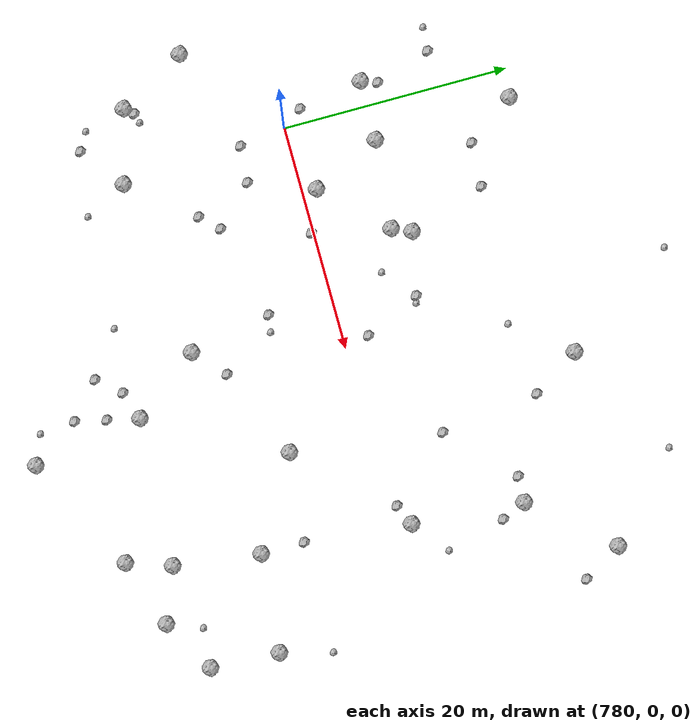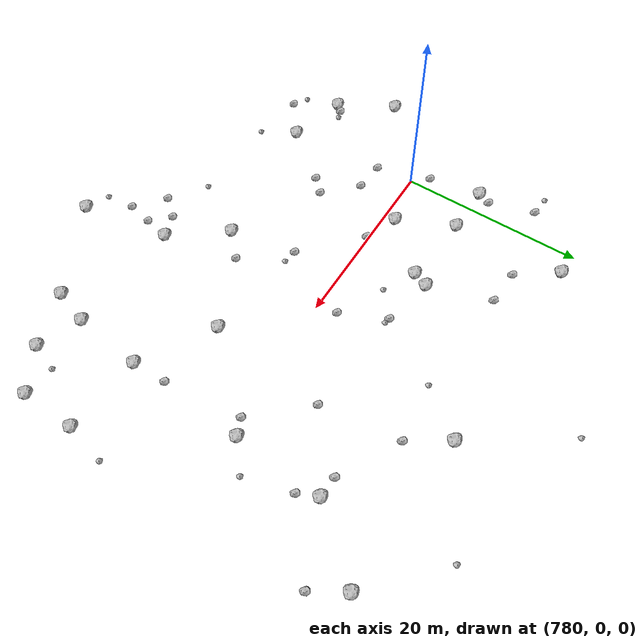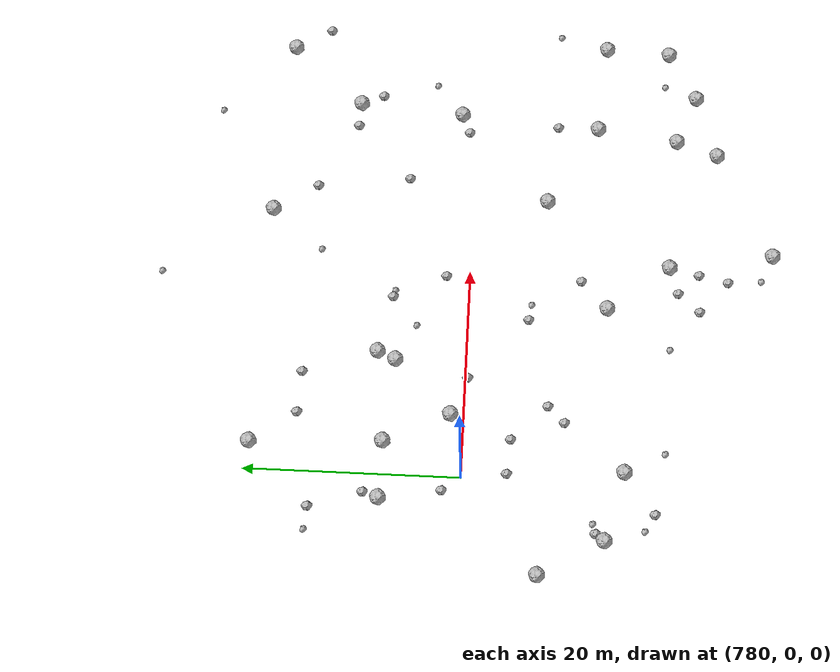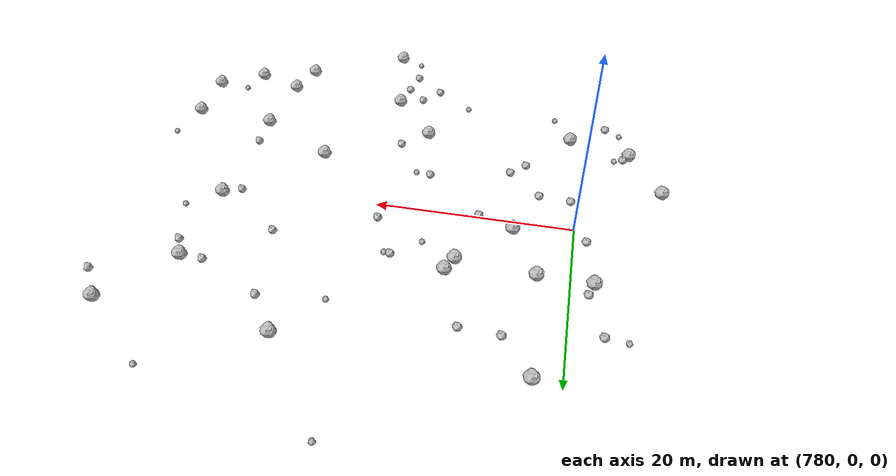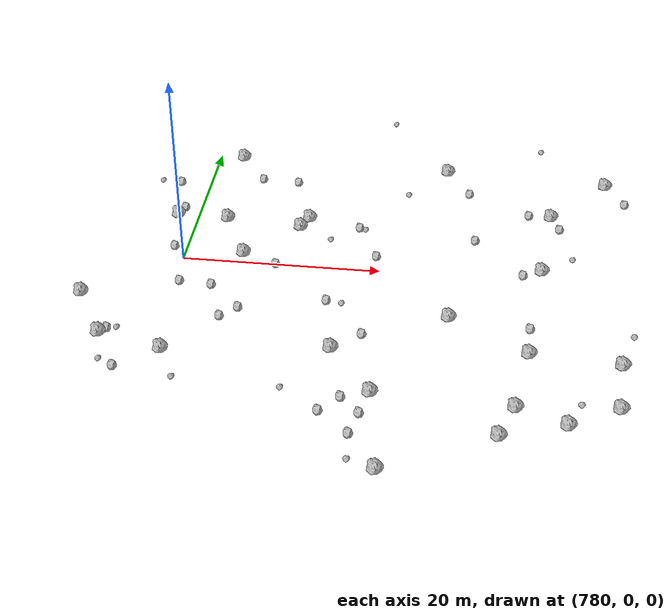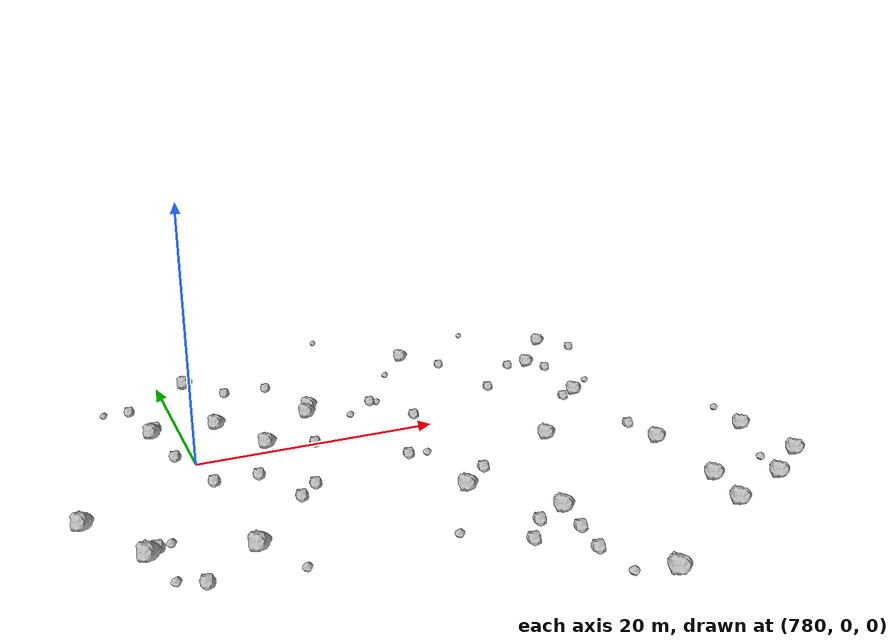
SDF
<sdf version="1.6">
 <world name="default">
  <include><uri>model://sun</uri></include>
  <model name="rock1_20_4">
   <include><uri>model://rock1</uri><pose>781.1143959704816 -14.801924576898525 0.5 0 0 0</pose></include>
  </model>
  <model name="rock1_20_5">
   <include><uri>model://rock1</uri><pose>774.7118608788161 -13.091684093272661 0.5 0 0 0</pose></include>
  </model>
  <model name="rock1_20_6">
   <include><uri>model://rock1</uri><pose>782.6482557665228 19.5563667849596 0.5 0 0 0</pose></include>
  </model>
  <model name="rock1_20_7">
   <include><uri>model://rock1</uri><pose>815.1859044558648 -11.678978093760762 0.5 0 0 0</pose></include>
  </model>
  <model name="rock1_20_8">
   <include><uri>model://rock1</uri><pose>771.3664273071158 -7.144793234342696 0.5 0 0 0</pose></include>
  </model>
  <model name="rock1_20_9">
   <include><uri>model://rock1</uri><pose>801.1620697588274 -18.697663070166705 0.5 0 0 0</pose></include>
  </model>
  <model name="rock1_20_10">
   <include><uri>model://rock1</uri><pose>814.1579942251059 -19.272738640947153 0.5 0 0 0</pose></include>
  </model>
  <model name="rock1_20_11">
   <include><uri>model://rock1</uri><pose>777.8475024990588 7.451755586146959 0.5 0 0 0</pose></include>
  </model>
  <model name="rock1_20_12">
   <include><uri>model://rock1</uri><pose>783.166279766938 7.33628097747571 0.5 0 0 0</pose></include>
  </model>
  <model name="rock1_20_13">
   <include><uri>model://rock1</uri><pose>807.4161062104773 -7.036719003663219 0.5 0 0 0</pose></include>
  </model>
  <model name="rock1_20_14">
   <include><uri>model://rock1</uri><pose>816.1447306439768 1.4630588673814557 0.5 0 0 0</pose></include>
  </model>
  <model name="rock1_20_15">
   <include><uri>model://rock1</uri><pose>785.9618201999773 1.2608693139272589 0.5 0 0 0</pose></include>
  </model>
  <model name="rock1_20_16">
   <include><uri>model://rock1</uri><pose>822.6888401040292 18.081163153436528 0.5 0 0 0</pose></include>
  </model>
  <model name="rock1_20_17">
   <include><uri>model://rock1</uri><pose>823.7576871864743 -12.400253474397452 0.5 0 0 0</pose></include>
  </model>
  <model name="rock1_20_18">
   <include><uri>model://rock1</uri><pose>802.709558870213 -28.40006693582899 0.5 0 0 0</pose></include>
  </model>
  <model name="rock1_20_19">
   <include><uri>model://rock1</uri><pose>796.8241577615923 -12.920817961935573 0.5 0 0 0</pose></include>
  </model>
  <model name="rock1_20_20">
   <include><uri>model://rock1</uri><pose>791.748212026855 8.271271270895248 0.5 0 0 0</pose></include>
  </model>
  <model name="rock1_20_21">
   <include><uri>model://rock1</uri><pose>791.0187248225208 6.589058041667677 0.5 0 0 0</pose></include>
  </model>
  <model name="rock1_20_22">
   <include><uri>model://rock1</uri><pose>823.4310396901041 -18.429309798916357 0.5 0 0 0</pose></include>
  </model>
  <model name="rock1_20_23">
   <include><uri>model://rock1</uri><pose>816.9327116435347 11.301347458017396 0.5 0 0 0</pose></include>
  </model>
  <model name="rock1_20_24">
   <include><uri>model://rock1</uri><pose>812.8437942377033 -23.138771244433247 0.5 0 0 0</pose></include>
  </model>
  <model name="rock1_20_25">
   <include><uri>model://rock1</uri><pose>818.8205836789558 -21.099429211383544 0.5 0 0 0</pose></include>
  </model>
  <model name="rock1_20_26">
   <include><uri>model://rock1</uri><pose>805.5777661902691 19.012501897061064 0.5 0 0 0</pose></include>
  </model>
  <model name="rock2_20_0">
   <include><uri>model://rock2</uri><pose>814.2760743486426 0.6809979689615666 0.3 0 0 0</pose></include>
  </model>
  <model name="rock2_20_1">
   <include><uri>model://rock2</uri><pose>789.4852060740668 15.14376752295545 0.3 0 0 0</pose></include>
  </model>
  <model name="rock2_20_2">
   <include><uri>model://rock2</uri><pose>778.7310093641992 1.7507945348416314 0.3 0 0 0</pose></include>
  </model>
  <model name="rock2_20_3">
   <include><uri>model://rock2</uri><pose>817.8186601531096 9.199051556157713 0.3 0 0 0</pose></include>
  </model>
  <model name="rock2_20_4">
   <include><uri>model://rock2</uri><pose>775.3209106030786 -12.291414917289977 0.3 0 0 0</pose></include>
  </model>
  <model name="rock2_20_5">
   <include><uri>model://rock2</uri><pose>799.4337073936895 2.2286326025020244 0.3 0 0 0</pose></include>
  </model>
  <model name="rock2_20_6">
   <include><uri>model://rock2</uri><pose>777.2893303642983 -17.66345952536346 0.3 0 0 0</pose></include>
  </model>
  <model name="rock2_20_7">
   <include><uri>model://rock2</uri><pose>808.15783475953 14.91396230465385 0.3 0 0 0</pose></include>
  </model>
  <model name="rock2_20_8">
   <include><uri>model://rock2</uri><pose>815.1729459499054 -7.847443621375003 0.3 0 0 0</pose></include>
  </model>
  <model name="rock2_20_9">
   <include><uri>model://rock2</uri><pose>797.1830935726776 7.1339974868662 0.3 0 0 0</pose></include>
  </model>
  <model name="rock2_20_10">
   <include><uri>model://rock2</uri><pose>795.396425804319 -5.633618823869135 0.3 0 0 0</pose></include>
  </model>
  <model name="rock2_20_11">
   <include><uri>model://rock2</uri><pose>796.8489046917697 -21.584657946807702 0.3 0 0 0</pose></include>
  </model>
  <model name="rock2_20_12">
   <include><uri>model://rock2</uri><pose>776.7705970364867 13.813587448966416 0.3 0 0 0</pose></include>
  </model>
  <model name="rock2_20_13">
   <include><uri>model://rock2</uri><pose>789.4997210212233 -0.17556329613711696 0.3 0 0 0</pose></include>
  </model>
  <model name="rock2_20_14">
   <include><uri>model://rock2</uri><pose>800.4951193752339 -21.497865225486148 0.3 0 0 0</pose></include>
  </model>
  <model name="rock2_20_15">
   <include><uri>model://rock2</uri><pose>798.5965419212214 -19.55090749748227 0.3 0 0 0</pose></include>
  </model>
  <model name="rock2_20_16">
   <include><uri>model://rock2</uri><pose>785.5480261861437 -9.235751763324686 0.3 0 0 0</pose></include>
  </model>
  <model name="rock2_20_17">
   <include><uri>model://rock2</uri><pose>814.5973953439446 11.431312937657182 0.3 0 0 0</pose></include>
  </model>
  <model name="rock2_20_18">
   <include><uri>model://rock2</uri><pose>778.2953917419188 8.892444524318947 0.3 0 0 0</pose></include>
  </model>
  <model name="rock2_20_19">
   <include><uri>model://rock2</uri><pose>783.7714277765534 -4.3648395746050035 0.3 0 0 0</pose></include>
  </model>
  <model name="rock2_20_20">
   <include><uri>model://rock2</uri><pose>785.5777789770212 15.364342828946683 0.3 0 0 0</pose></include>
  </model>
  <model name="rock2_20_21">
   <include><uri>model://rock2</uri><pose>809.224948016026 6.180502170940535 0.3 0 0 0</pose></include>
  </model>
  <model name="rock2_20_22">
   <include><uri>model://rock2</uri><pose>787.0665495066233 -7.679733229780194 0.3 0 0 0</pose></include>
  </model>
  <model name="rock2_20_23">
   <include><uri>model://rock2</uri><pose>799.4322350754119 -10.454627295763881 0.3 0 0 0</pose></include>
  </model>
  <model name="rock2_20_24">
   <include><uri>model://rock2</uri><pose>824.6713417071596 14.724914519653417 0.3 0 0 0</pose></include>
  </model>
  <model name="rock2_20_25">
   <include><uri>model://rock2</uri><pose>780.526501299418 -4.1078483482434756 0.3 0 0 0</pose></include>
  </model>
  <model name="rock2_20_26">
   <include><uri>model://rock2</uri><pose>799.877344368856 -24.2199029014684 0.3 0 0 0</pose></include>
  </model>
  <model name="rock3_20_0">
   <include><uri>model://rock3</uri><pose>800.1308506216144 -27.382715499392724 0.2 0 0 0</pose></include>
  </model>
  <model name="rock3_20_1">
   <include><uri>model://rock3</uri><pose>775.6913353311584 -16.79913943356463 0.2 0 0 0</pose></include>
  </model>
  <model name="rock3_20_2">
   <include><uri>model://rock3</uri><pose>798.8267853289206 29.00123817742862 0.2 0 0 0</pose></include>
  </model>
  <model name="rock3_20_3">
   <include><uri>model://rock3</uri><pose>815.6719572529055 24.636610448266865 0.2 0 0 0</pose></include>
  </model>
  <model name="rock3_20_4">
   <include><uri>model://rock3</uri><pose>797.7907597808643 6.942454125783755 0.2 0 0 0</pose></include>
  </model>
  <model name="rock3_20_5">
   <include><uri>model://rock3</uri><pose>819.1659313305872 3.9589487324391115 0.2 0 0 0</pose></include>
  </model>
  <model name="rock3_20_6">
   <include><uri>model://rock3</uri><pose>776.1890545955198 -12.065819506112959 0.2 0 0 0</pose></include>
  </model>
  <model name="rock3_20_7">
   <include><uri>model://rock3</uri><pose>793.0008747965014 -18.8637488179515 0.2 0 0 0</pose></include>
  </model>
  <model name="rock3_20_8">
   <include><uri>model://rock3</uri><pose>796.8919496798459 -5.8906296464202725 0.2 0 0 0</pose></include>
  </model>
  <model name="rock3_20_9">
   <include><uri>model://rock3</uri><pose>774.6165109283826 13.978234605376002 0.2 0 0 0</pose></include>
  </model>
  <model name="rock3_20_10">
   <include><uri>model://rock3</uri><pose>794.4200590311809 4.766977964276265 0.2 0 0 0</pose></include>
  </model>
  <model name="rock3_20_11">
   <include><uri>model://rock3</uri><pose>801.6542566946258 14.125364394228441 0.2 0 0 0</pose></include>
  </model>
  <model name="rock3_20_12">
   <include><uri>model://rock3</uri><pose>819.9608101447594 -18.156704910234883 0.2 0 0 0</pose></include>
  </model>
  <model name="rock3_20_13">
   <include><uri>model://rock3</uri><pose>824.9213283137578 -7.945217508534135 0.2 0 0 0</pose></include>
  </model>
  <model name="rock3_20_14">
   <include><uri>model://rock3</uri><pose>782.9641493454028 -18.54093758860761 0.2 0 0 0</pose></include>
  </model>
 </world>
</sdf>
